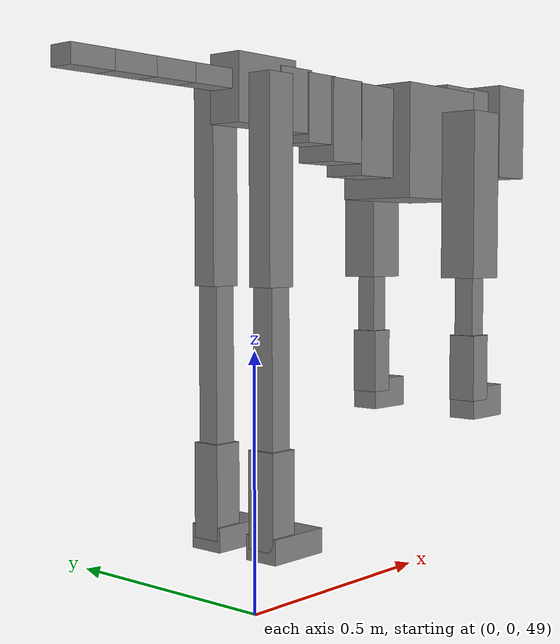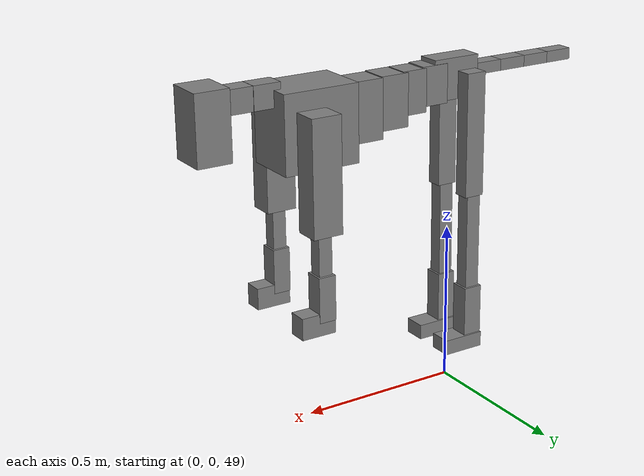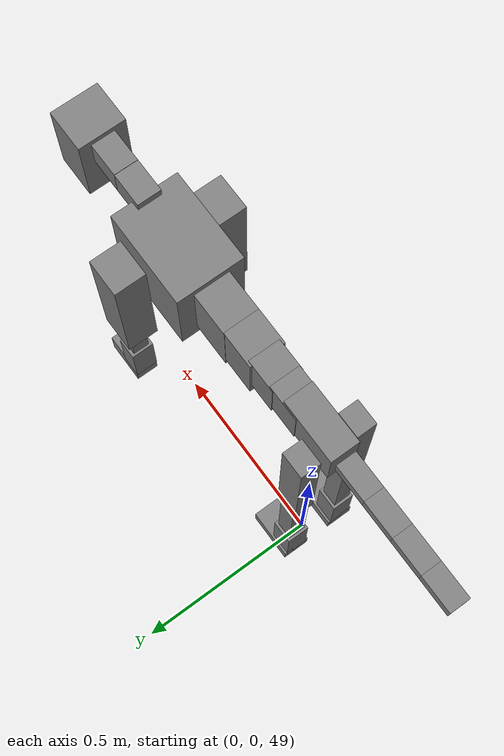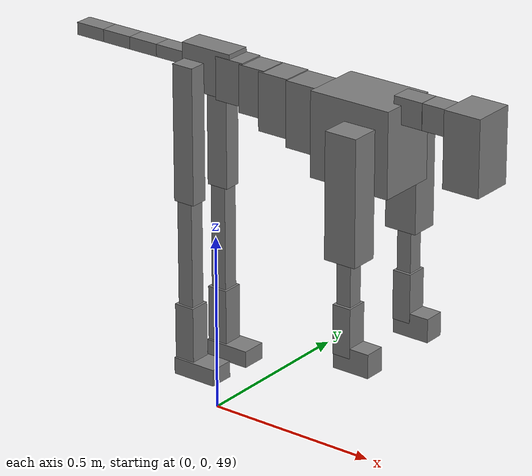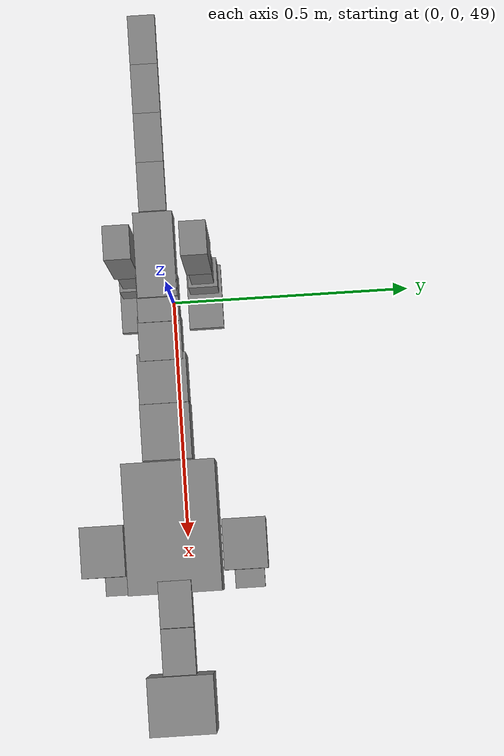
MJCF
<mujoco model="dog">

    <default>
        <joint armature="0.02" stiffness="1" damping="0.2" limited="true"/>
        <geom condim="3" friction="1 0.05 0.05" margin="0.01"/>
        <motor ctrllimited="true" ctrlrange="-1.0 1.0" forcelimited="true" gear="50"/>
    </default>

    <compiler inertiafromgeom="true" angle="radian"/>

    <option timestep="0.016" iterations="50" tolerance="1e-10" solver="Newton" jacobian="dense" cone="pyramidal"/>

    <size nconmax="20000" njmax="60000" nstack="5000000"/>
    <visual>
        <map force="0.1" zfar="30"/>
        <rgba haze="0.15 0.25 0.35 1"/>
        <quality shadowsize="2048"/>
        <global offwidth="800" offheight="800"/>
    </visual>

    <asset>
        <texture type="skybox" builtin="gradient" rgb1="0.3 0.5 0.7" rgb2="0 0 0" width="512" height="512"/>
        <texture name="texplane" type="2d" builtin="checker" rgb1=".2 .3 .4" rgb2=".1 0.15 0.2" width="512" height="512"
                 mark="cross" markrgb=".8 .8 .8"/>
        <texture name="texgeom" type="cube" builtin="flat" mark="cross" width="127" height="1278" rgb1="0.8 0.6 0.4"
                 rgb2="0.8 0.6 0.4" markrgb="1 1 1" random="0.01"/>

        <material name="matplane" reflectance="0.3" texture="texplane" texrepeat="1 1" texuniform="true"/>
        <material name="matgeom" texture="texgeom" texuniform="true" rgba="0.8 0.6 .4 1"/>
    </asset>

    <worldbody>
        <geom name="floor" pos="0 0 0" size="0 0 .25" type="plane" material="matplane" condim="3"/>

        <light directional="false" diffuse=".2 .2 .2" specular="0 0 0" pos="0 0 5" dir="0 0 -1" castshadow="false"/>
        <light mode="targetbodycom" target="torso" directional="false" diffuse=".8 .8 .8" specular="0.3 0.3 0.3"
               pos="0 0 4.0" dir="0 0 -1"/>

        <body name="root" pos="0 0 50">
            <freejoint name="root_1"/>
            <geom type="box" pos="0 0 -0.02" size="0.0774  0.0358  0.063" density="2030"/>

            <body name="spine1" pos="0.054 0 0">
                <joint name="spine1_y" axis="0 1 0" range="0 0.7" limited="true"/>
                <geom type="box" pos="0.02375 0 -0.03" size="0.04375  0.0375  0.05985" density="2030"/>

                <body name="spine2" pos="0.0612 0 0">
                    <joint name="spine2_y" axis="0 1 0" range="-0.15 0.15" limited="true"/>
                    <geom type="box" pos="0.03555  0  -0.04" size="0.04055  0.039  0.06615" density="2030"/>

                    <body name="spine3" pos="0.0730 0 0">
                        <joint name="spine3_y" axis="0 1 0" range="-0.15 0.15" limited="true"/>
                        <geom type="box" pos="0.03555  0  -0.057" size="0.04555  0.0445  0.081" density="2030"/>

                        <body name="spine4" pos="0.0780 0 0">
                            <joint name="spine4_y" axis="0 1 0" range="-0.15 0.15" limited="true"/>
                            <geom type="box" pos="0.05265  0  -0.07" size="0.05265  0.045  0.09135" density="2030"/>

                            <body name="torso" pos="0.1082 0 0">
                                <joint name="torso_y" axis="0 1 0" range="-0.15 0.15" limited="true"/>
                                <geom type="box" pos="0.11925  0  -0.085" size="0.11925  0.085  0.11745"
                                      density="2030"/>

                                <body name="neck1" pos="0.2160  0   0.0180">
                                    <joint name="neck1_y" axis="0 1 0" range="-1.2  -1" limited="true"/>
                                    <geom type="box" pos="0.0423  0  0" size="0.0423  0.03  0.036" density="2325"/>

                                    <body name="neck2" pos="0.0853  0  0">
                                        <joint name="neck2_y" axis="0 1 0" range="0.1  0" limited="true"/>
                                        <geom type="box" pos="0.0423  0  0" size="0.0423  0.03  0.036" density="2325"/>

                                        <body name="head" pos="0.0853  0  0">
                                            <joint name="head_y" axis="0 1 0" range="-0.3  -0.2" limited="true"/>
                                            <geom type="box" pos="0.0531  0  -0.055" size="0.0531  0.06  0.1044"
                                                  density="4030"/>

                                        </body>
                                    </body>
                                </body>

                                <body name="front_shoulder" pos="0.156  0   -0.0480">
                                    <joint name="front_shoulder_y" axis="0 1 0" range="-1 1.5" limited="true"/>
                                    <geom type="box" pos="0 0.13 -0.1472" size="0.0468  0.0400  0.1738" density="1158"/>
                                    <geom type="box" pos="0 -0.13 -0.1472" size="0.0468  0.0400  0.1738"
                                          density="1158"/>

                                    <body name="front_elbow" pos="0  0  -0.2944">
                                        <joint name="front_elbow_y" axis="0 1 0" range="-2 0" limited="true"/>
                                        <geom type="box" pos="0 0.13 -0.0806" size="0.0211  0.0215  0.0806"
                                              density="1081"/>
                                        <geom type="box" pos="0 -0.13 -0.0806" size="0.0211  0.0215  0.0806"
                                              density="1081"/>

                                        <body name="front_wrist" pos="0  0  -0.1612">
                                            <joint name="front_wrist_y" axis="0 1 0" range="-0.2 0" limited="true"/>
                                            <geom type="box" pos="0 0.13 -0.0559" size="0.0268  0.0298  0.0690"
                                                  density="1664"/>
                                            <geom type="box" pos="0 -0.13 -0.0559" size="0.0268  0.0298  0.0690"
                                                  density="1664"/>

                                            <body name="front_finger_end" pos="0  0  -0.1118">
                                                <joint name="front_finger_y" axis="0 1 0" range="-0.4 1"
                                                       limited="true"/>
                                                <geom type="box" pos="0.0296  0.13  -0.0183"
                                                      size="0.0542  0.0296  0.0333" density="1515"/>
                                                <geom type="box" pos="0.0296  -0.13  -0.0183"
                                                      size="0.0542  0.0296  0.0333" density="1515"/>

                                            </body>

                                        </body>
                                    </body>
                                </body>

                            </body>
                        </body>
                    </body>
                </body>
            </body>

            <body name="back_hip" pos="-0.03 0 -0.018">
                <joint name="back_hip_y" axis="0 1 0" range="-1.5 0.3" limited="true"/>
                <geom type="box" pos="0 0.07 -0.1686" size="0.0316  0.0247  0.1914" density="1154"/>
                <geom type="box" pos="0 -0.07 -0.1686" size="0.0316  0.0247  0.1914" density="1154"/>

                <body name="back_knee" pos="0  0  -0.3371">
                    <joint name="back_knee_y" axis="0 1 0" range="0 2.8" limited="true"/>
                    <geom type="box" pos="0 0.07 -0.1648" size="0.0230  0.0226  0.1804" density="1227"/>
                    <geom type="box" pos="0 -0.07 -0.1648" size="0.0230  0.0226  0.1804" density="1227"/>

                    <body name="back_ankle" pos="0  0  -0.3297">
                        <joint name="back_ankle_y" axis="0 1 0" range="-2.2 0" limited="true"/>
                        <geom type="box" pos="0 0.07 -0.0797" size="0.0297  0.0297  0.0910" density="1284"/>
                        <geom type="box" pos="0 -0.07 -0.0797" size="0.0297  0.0297  0.0910" density="1284"/>

                        <body name="back_toe_end" pos="0  0  -0.1595">
                            <joint name="back_toe_y" axis="0 1 0" range="-0.4 1" limited="true"/>
                            <geom type="box" pos="0.0357  0.07  -0.0085" size="0.0654  0.0357  0.0235" density="1515"/>
                            <geom type="box" pos="0.0357  -0.07  -0.0085" size="0.0654  0.0357  0.0235" density="1515"/>

                        </body>
                    </body>
                </body>
            </body>

            <body name="tail1" pos="-0.074 0 -0.006">
                <joint name="tail1_y" axis="0 1 0" range="-0.2 0.2" limited="true"/>
                <geom type="box" pos="-0.0536  0  0" size="0.045  0.025  0.0175" density="1587"/>

                <body name="tail2" pos="-0.09 0 0">
                    <joint name="tail2_y" axis="0 1 0" range="-0.2 0.2" limited="true"/>
                    <geom type="box" pos="-0.0536  0  0" size="0.045  0.025  0.0175" density="1587"/>

                    <body name="tail3" pos="-0.09 0 0">
                        <joint name="tail3_y" axis="0 1 0" range="-0.2 0.2" limited="true"/>
                        <geom type="box" pos="-0.0536  0  0" size="0.045  0.025  0.0175" density="1587"/>

                        <body name="tail4" pos="-0.09 0 0">
                            <joint name="tail4_y" axis="0 1 0" range="-0.2 0.2" limited="true"/>
                            <geom type="box" pos="-0.0536  0  0" size="0.045  0.025  0.0175" density="1587"/>

                        </body>
                    </body>
                </body>
            </body>
        </body>
    </worldbody>

    <actuator>
        <motor joint="spine1_y" forcerange="-150 150     "/>
        <motor joint="spine2_y" forcerange="-150 150     "/>
        <motor joint="spine3_y" forcerange="-150 150     "/>
        <motor joint="spine4_y" forcerange="-150 150     "/>
        <motor joint="torso_y" forcerange="-150 150     "/>
        <motor joint="neck1_y" forcerange="-100 100       "/>
        <motor joint="neck2_y" forcerange="-100 100       "/>
        <motor joint="head_y" forcerange="-150 150       "/>
        <motor joint="front_shoulder_y" forcerange="-173.21 193.65"/>
        <motor joint="front_elbow_y" forcerange="-114.22 142.33"/>
        <motor joint="front_wrist_y" forcerange="-99.53 138.63"/>
        <motor joint="front_finger_y" forcerange="-74.60 43.03"/>
        <motor joint="back_hip_y" forcerange="-268.91 261.03"/>
        <motor joint="back_knee_y" forcerange="-228.76 300.29"/>
        <motor joint="back_angle_y" forcerange="-169.60 206.08"/>
        <motor joint="back_toe_y" forcerange="-69.97 135.36"/>
        <motor joint="tail1_y" forcerange="-50 50     "/>
        <motor joint="tail2_y" forcerange="-50 50     "/>
        <motor joint="tail3_y" forcerange="-50 50     "/>
        <motor joint="tail4_y" forcerange="-50 50     "/>
    </actuator>
</mujoco>
